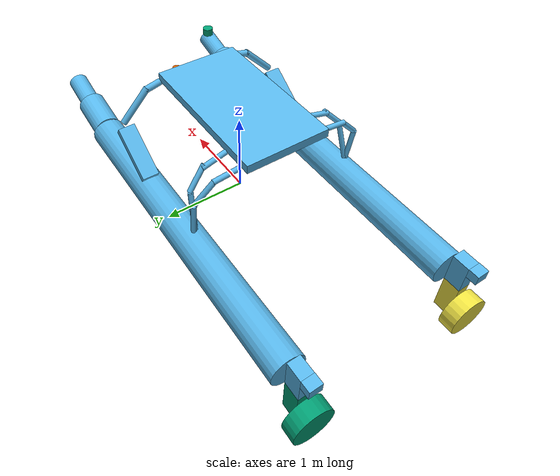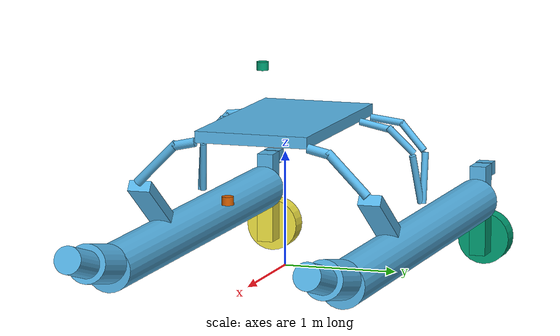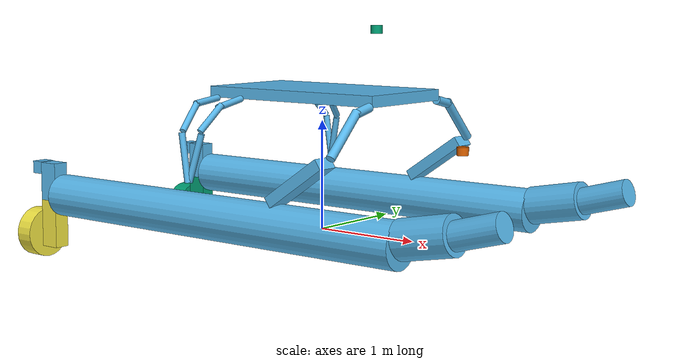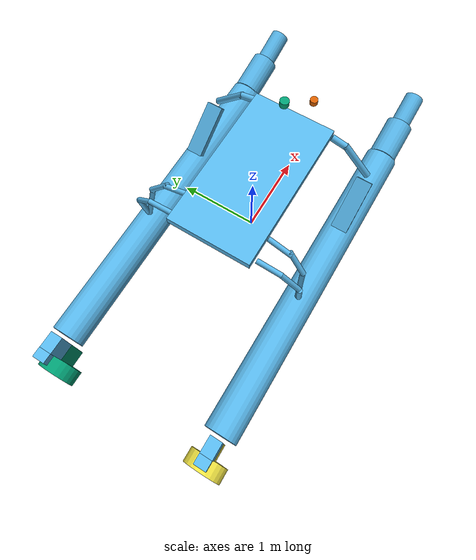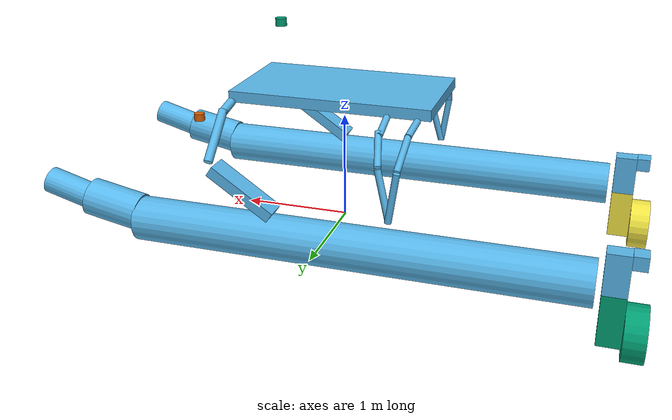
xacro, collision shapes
<?xml version="1.0"?>
<robot xmlns:xacro="http://ros.org/wiki/xacro" name="WAM-V">
  <!-- Defines the basic WAM-V -->
  <xacro:include filename="$(find wamv_description)/urdf/wamv_basic.xacro"/>

  <!-- Defines Sensors -->
  <xacro:include filename="$(find wamv_description)/urdf/sensors/sensors.urdf.xacro"/>
</robot>

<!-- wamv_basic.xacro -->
<robot xmlns:xacro="http://ros.org/wiki/xacro" name="wam-v">
  <!-- Defines the base vehicle -->
  <xacro:include filename="$(find wamv_description)/urdf/base/base.urdf.xacro" />
  <xacro:include filename="$(find wamv_description)/urdf/thruster/thruster.urdf.xacro"/>
  <xacro:include filename="$(find wamv_description)/urdf/ball_launcher/ball_launcher.urdf.xacro" />
  <xacro:base_v0/>
  <xacro:thruster_v0 prefix="left" prefix_factor="1"/>
  <xacro:thruster_v0 prefix="right" prefix_factor="-1"/>
  <gazebo>
    <plugin name="gazebo_ros_control" filename="libgazebo_ros_control.so">
    </plugin>
  </gazebo>
  <xacro:ball_launcher_v0/>

  <!-- Attach hydrodynamics plugin -->
  <xacro:include filename="$(find robotx_gazebo)/urdf/wamv_gazebo_dynamics_plugin.xacro" />
  <xacro:usv_dynamics_gazebo name="wamv_dynamics_plugin"/>

  <!-- Attach wind plugin -->
  <xacro:include filename="$(find robotx_gazebo)/urdf/wamv_gazebo_wind_plugin.xacro" />
  <xacro:usv_wind_gazebo name="wamv_wind_plugin"/>

  <!-- Attach thrust plugin -->
  <xacro:include filename="$(find robotx_gazebo)/urdf/wamv_gazebo_thrust_plugin.xacro" />
  <xacro:usv_thrust_gazebo name="wamv_thrust_plugin"/>

  <!-- Attach Ball Launcher plugin -->
  <xacro:include filename="$(find robotx_gazebo)/urdf/wamv_gazebo_ball_launcher_plugin.xacro" />
  <xacro:ball_launcher_gazebo name="wamv_ball_launcher_plugin"/>
  <xacro:usv_thrust_gazebo name="wamv_thrust_plugin"/>

  <!-- Attach cog_publisher plugin -->
  <xacro:include filename="$(find robotx_gazebo)/urdf/gazebo_cog_publisher_plugin.xacro" />
  <xacro:cog_publisher_gazebo name="gazebo_cog_publisher"/>
</robot>

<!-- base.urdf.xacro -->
<robot xmlns:xacro="http://ros.org/wiki/xacro" name="wam-v">
  <xacro:include filename="$(find wamv_description)/urdf/data/properties.xacro"/>

  <xacro:macro name="base_v0">
    <!-- base_footprint -->
    <link name="base_footprint"/>
    <joint name="base_link_joint" type="fixed">
      <origin xyz="0 0 0"/>
      <parent link="base_footprint"/>
      <child link="base_link"/>
    </joint>
    <!-- base_link -->
    <link name="base_link">
      <wind>true</wind>
      <!-- Visual -->
      <visual>
        <geometry>
          <mesh filename="package://wamv_description/mesh/base/WAMV-BASE.dae"/>
        </geometry>
      </visual>
      <!-- Collision -->
      <collision name="top_base">
        <origin xyz="0 -0 1.25" rpy="0 0 0" />
        <geometry>
          <box size="1.85 1 0.1" />
        </geometry>
      </collision>
      <xacro:float_collision_v0 prefix="left" prefix_factor="1"/>
      <xacro:float_collision_v0 prefix="right" prefix_factor="-1"/>
      <xacro:beam_collision_v0 prefix="left" prefix_factor="1"/>
      <xacro:beam_collision_v0 prefix="right" prefix_factor="-1"/>
      <!-- Inertial -->
      <inertial>
        <!-- From von Ellenrieder, consistent with WAM-V specs-->
        <mass value="340.0"/>
        <inertia ixx="120.0" ixy="0.0" ixz="0.0" iyy="393" iyz="0.0" izz="446.0"/>
      </inertial>
    </link>
  </xacro:macro>

  <xacro:macro name="float_collision_v0" params="prefix prefix_factor">
    <!-- Float -->
    <collision name="${prefix}_float">
      <origin xyz="-0.4 ${prefix_factor*1.03} 0.2" rpy="0 1.57 0" />
      <geometry>
        <cylinder length="4" radius="0.2" />
      </geometry>
    </collision>
    <collision name="${prefix}_mid_float">
      <origin xyz="1.85 ${prefix_factor*1.03} 0.3" rpy="0 1.38 0" />
      <geometry>
        <cylinder length="0.5" radius="0.17" />
      </geometry>
    </collision>
    <collision name="${prefix}_front_float">
      <origin xyz="2.3 ${prefix_factor*1.03} 0.4" rpy="0 1.3 0" />
      <geometry>
        <cylinder length="0.45" radius="0.12" />
      </geometry>
    </collision>
    <!-- Engine Part -->
    <collision name="${prefix}_engine_vertical_axis">
      <origin xyz="-2.55 ${prefix_factor*1.03} 0.32"/>
      <geometry>
        <box size="0.2 0.15 0.37" />
      </geometry>
    </collision>
    <collision name="${prefix}_engine_rear_end">
      <origin xyz="-2.71 ${prefix_factor*1.03} 0.45"/>
      <geometry>
        <box size="0.12 0.15 0.12" />
      </geometry>
    </collision>
  </xacro:macro>

  <xacro:macro name="beam_collision_v0" params="prefix prefix_factor">
    <!-- Beam -->
    <!-- Front -->
    <collision name="front_${prefix}_beam_lower">
      <origin xyz="0.9 ${prefix_factor*0.85} 1" rpy="${prefix_factor*0.78} 0 0" />
      <geometry>
        <cylinder length="0.5" radius="0.04" />
      </geometry>
    </collision>
    <collision name="front_${prefix}_beam_upper">
      <origin xyz="0.9 ${prefix_factor*0.6} 1.18" rpy="${prefix_factor*1.35} 0 0" />
      <geometry>
        <cylinder length="0.2" radius="0.04" />
      </geometry>
    </collision>
    <!-- Middle -->
    <collision name="mid_${prefix}_beam_lower">
      <origin xyz="-0.65 ${prefix_factor*0.99} 0.7" rpy="${prefix_factor*0.1} 0.25 0" />
      <geometry>
        <cylinder length="0.45" radius="0.03" />
      </geometry>
    </collision>
    <collision name="mid_${prefix}_beam_medium">
      <origin xyz="-0.57 ${prefix_factor*0.87} 1.05" rpy="${prefix_factor*0.75} 0.25 0" />
      <geometry>
        <cylinder length="0.32" radius="0.03" />
      </geometry>
    </collision>
    <collision name="mid_${prefix}_beam_upper">
      <origin xyz="-0.55 ${prefix_factor*0.65} 1.17" rpy="${prefix_factor*1.35} 0.25 0" />
      <geometry>
        <cylinder length="0.3" radius="0.03" />
      </geometry>
    </collision>
    <!-- Rear -->
    <collision name="rear_${prefix}_beam_lower">
      <origin xyz="-0.74 ${prefix_factor*1.03} 0.7" rpy="0 -0.15 0" />
      <geometry>
        <cylinder length="0.45" radius="0.03" />
      </geometry>
    </collision>
    <collision name="rear_${prefix}_beam_medium">
      <origin xyz="-0.79 ${prefix_factor*0.91} 1.05" rpy="${prefix_factor*0.75} -0.15 0" />
      <geometry>
        <cylinder length="0.32" radius="0.03" />
      </geometry>
    </collision>
    <collision name="rear_${prefix}_beam_upper">
      <origin xyz="-0.81 ${prefix_factor*0.67} 1.18" rpy="${prefix_factor*1.45} -0.15 0" />
      <geometry>
        <cylinder length="0.3" radius="0.03" />
      </geometry>
    </collision>
    <!-- Joint -->
    <collision name="${prefix}_joint">
      <origin xyz="0.58 ${prefix_factor*1.03} 0.6" rpy="0 -0.6 0" />
      <geometry>
        <box size="0.65 0.2 0.1" />
      </geometry>
    </collision>
  </xacro:macro>
</robot>

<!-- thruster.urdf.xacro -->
<robot xmlns:xacro="http://ros.org/wiki/xacro" name="wam-v">
  <xacro:include filename="$(find wamv_description)/urdf/data/common.xacro"/>
  <xacro:include filename="$(find wamv_description)/urdf/thruster/thruster.transmission.xacro"/>

  <xacro:macro name="thruster_v0" params="prefix prefix_factor">
    <link name="${prefix}_thruster_link">
      <!-- Visual -->
      <visual>
        <origin xyz="-2.5045 1.02714 -0.14563" rpy="0 0 ${pi}"/>
        <geometry>
          <mesh filename="package://wamv_description/mesh/base/WAMV-Thruster.dae"/>
        </geometry>
      </visual>
      <!-- Collision -->
      <collision name="${prefix}_thruster_vertical_axis">
        <origin xyz="0.045 ${prefix_factor*-0.003} -0.240"/>
        <geometry>
          <box size="0.2 0.15 0.46"/>
        </geometry>
      </collision>
      <collision name="${prefix}_thruster_propeller">
        <origin xyz="0.235 ${prefix_factor*-0.003} -0.345" rpy="0 ${pi/2} 0"/>
        <geometry>
          <cylinder length="0.18" radius="0.24"/>
        </geometry>
      </collision>
      <!-- Inertial -->
      <inertial name="${prefix}_thruster_vertical_axis">
        <origin xyz="0.045 ${prefix_factor*-0.003} -0.240"/>
        <xacro:box_inertial mass="2.5" height="0.2" width="0.15" depth="0.46"/>
      </inertial>
      <inertial name="${prefix}_thruster_propeller">
        <origin xyz="0.235 ${prefix_factor*-0.003} -0.345" rpy="0 ${pi/2} 0"/>
        <xacro:cylinder_inertial mass="0.5" length="0.18" radius="0.24"/>
      </inertial>
    </link>
    <joint name="${prefix}_thruster_joint" type="revolute">
      <origin xyz="-2.5045 ${prefix_factor*1.02714} 0.14563" rpy="0 0 ${pi}"/>"
      <parent link="base_link"/>
      <child link="${prefix}_thruster_link"/>
      <axis xyz="0 0 1"/>
      <dynamics damping="0.7" friction="0.7"/>
      <limit effort="10.0" lower="${-3*pi/4}" upper="${3*pi/4}" velocity="${pi/2}"/>
    </joint>

    <!-- Transmission -->
    <xacro:thruster_transmission_v0 prefix="${prefix}"/>
  </xacro:macro>

</robot>

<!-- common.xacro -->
<robot xmlns:xacro="http://ros.org/wiki/xacro">

  <xacro:macro name="cylinder_inertial" params="mass radius length">
	<mass value="${mass}"/>
	<inertia ixx="${((radius*radius)/4 + (length*length)/12)*mass}" ixy="0" ixz="0"
			 iyy="${((radius*radius)/4 + (length*length)/12)*mass}" iyz="0"
			 izz="${(mass*radius*radius)/2}" />
  </xacro:macro>

  <xacro:macro name="box_inertial" params="mass height width depth">
	<mass value="${mass}"/>
	<inertia ixx="${(mass*(width*width+depth*depth))/12}" ixy="0" ixz="0"
			 iyy="${(mass*(height*height+depth*depth))/12}" iyz="0"
			 izz="${(mass*(height*height+width*width))/12}" />
  </xacro:macro>
</robot>

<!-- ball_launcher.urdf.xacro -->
<robot xmlns:xacro="http://ros.org/wiki/xacro" name="wam-v">
  <xacro:include filename="$(find wamv_description)/urdf/ball_launcher/ball_launcher.gazebo.xacro"/>
  <xacro:include filename="$(find wamv_description)/urdf/ball_launcher/ball_launcher.transmission.xacro"/>

  <xacro:macro name="ball_launcher_v0">
    <link name="ball_launcher_base_link">
      <!-- Inertial -->
      <inertial name="ball_launcher_base">
        <origin xyz="0 0 0"/>
        <xacro:box_inertial mass="0.1" height="0.2" width="0.2" depth="0.2"/>
      </inertial>
    </link>

    <joint name="ball_launcher_base_joint" type="fixed">
      <origin xyz="1.1 0 1.2"/>
      <parent link="base_link"/>
      <child link="ball_launcher_base_link"/>
    </joint>

    <link name="ball_launcher_yaw_link">
      <!-- Inertial -->
      <inertial name="ball_launcher_base">
        <origin xyz="0 0 0"/>
        <xacro:box_inertial mass="0.1" height="0.2" width="0.2" depth="0.2"/>
      </inertial>
    </link>

    <joint name="ball_launcher_yaw_joint" type="revolute">
      <origin xyz="0 0 0" rpy="0 0 0"/>"
      <parent link="ball_launcher_base_link"/>
      <child link="ball_launcher_yaw_link"/>
      <axis xyz="0 0 1"/>
      <dynamics damping="0.7" friction="0.7"/>
      <limit effort="10.0" lower="${-3*pi/4}" upper="${3*pi/4}" velocity="${pi/2}"/>
    </joint>

    <link name="ball_launcher_pitch_link">
      <!-- Inertial -->
      <inertial name="ball_launcher_base">
        <origin xyz="0 0 0"/>
        <xacro:box_inertial mass="0.1" height="0.2" width="0.2" depth="0.2"/>
      </inertial>
      <!-- Visual -->
      <visual>
        <geometry>
          <cylinder length="0.2" radius="0.05"/>
        </geometry>
        <origin rpy="0 ${pi/2} 0" xyz="0 0 0"/>
        <material name="gray"/>
      </visual>
    </link>

    <joint name="ball_launcher_pitch_joint" type="revolute">
      <origin xyz="0 0 0" rpy="${-3*pi/2} 0 0"/>"
      <parent link="ball_launcher_yaw_link"/>
      <child link="ball_launcher_pitch_link"/>
      <axis xyz="0 0 1"/>
      <dynamics damping="0.7" friction="0.7"/>
      <limit effort="10.0" lower="${-3*pi/4}" upper="${3*pi/4}" velocity="${pi/2}"/>
    </joint>

    <!-- Transmission -->
    <xacro:ball_launcher_transmission_v0/>

    <!-- Gazebo -->
    <xacro:ball_launcher_gazebo_v0/>
  </xacro:macro>
</robot>

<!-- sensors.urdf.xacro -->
<robot xmlns:xacro="http://ros.org/wiki/xacro" name="wam-v">
  <xacro:include filename="$(find wamv_description)/urdf/sensors/stereo_camera/stereo_camera.urdf.xacro"/>
  <xacro:include filename="$(find wamv_description)/urdf/sensors/gps/gps.urdf.xacro"/>
  <xacro:include filename="$(find wamv_description)/urdf/sensors/imu/imu.urdf.xacro"/>
  <xacro:include filename="$(find wamv_description)/urdf/sensors/twist/twist.urdf.xacro"/>
  <xacro:include filename="$(find wamv_description)/urdf/sensors/velodyne/velodyne.urdf.xacro"/>

  <!-- Camera-->
  <xacro:camera_v0 prefix="front" parent="base_link">
    <origin xyz="0.8 0 1.6"/>
  </xacro:camera_v0>
  <!-- GPS -->
  <xacro:gps_v0/>
  <!-- IMU -->
  <xacro:imu_v0/>
  <!-- Twist -->
  <xacro:twist_v0/>
  <!-- Velodyne -->
  <xacro:velodyne_v0/>

</robot>

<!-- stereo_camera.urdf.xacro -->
<robot xmlns:xacro="http://ros.org/wiki/xacro" name="wam-v">
  <xacro:include filename="$(find wamv_description)/urdf/sensors/camera/camera.urdf.xacro"/>
  <xacro:macro name="stereo_camera_v0" params="prefix parent base_line_length *origin">
    <!-- add link and joint -->
    <link name="${prefix}_stereo_camera_base_link"/>
    <joint name="${prefix}_stereo_camera_joint" type="fixed">
      <insert_block name="origin"/>
      <parent link="${parent}"/>
      <child link="${prefix}_stereo_camera_base_link"/>
    </joint>
    <!-- Left Camera -->
    <xacro:camera_v0 prefix="left" parent="${prefix}_stereo_camera_base_link">
      <origin xyz="0 ${base_line_length*(0.5)} 0"/>
    </xacro:camera_v0>
    <!-- Right Camera -->
    <xacro:camera_v0 prefix="right" parent="${prefix}_stereo_camera_base_link">
      <origin xyz="0 ${base_line_length*(-0.5)} 0"/>
    </xacro:camera_v0>
  </xacro:macro>
</robot>

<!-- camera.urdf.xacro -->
<robot xmlns:xacro="http://ros.org/wiki/xacro" name="wam-v">
  <xacro:include filename="$(find wamv_description)/urdf/sensors/camera/camera.gazebo.xacro"/>

  <xacro:macro name="camera_v0" params="prefix parent *origin">
    <!-- Link & Joint -->
    <link name="${prefix}_camera_link"/>
    <joint name="${prefix}_camera_joint" type="fixed">
      <insert_block name="origin"/>
      <parent link="${parent}"/>
      <child link="${prefix}_camera_link"/>
    </joint>
    <!-- Gazebo -->
    <xacro:camera_gazebo_v0 prefix="${prefix}"/>
  </xacro:macro>

</robot>

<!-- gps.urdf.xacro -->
<robot xmlns:xacro="http://ros.org/wiki/xacro" name="wam-v">
  <xacro:include filename="$(find wamv_description)/urdf/sensors/gps/gps.gazebo.xacro"/>

  <xacro:macro name="gps_v0">
    <!-- Link & Joint -->
    <link name="gps"/>
    <joint name="gps_joint" type="fixed">
      <origin xyz="0 0 1.5"/>
      <parent link="base_link"/>
      <child link="gps"/>
    </joint>
    <!-- Gazebo -->
    <xacro:gps_gazebo_v0/>
  </xacro:macro>

</robot>

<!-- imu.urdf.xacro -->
<robot xmlns:xacro="http://ros.org/wiki/xacro" name="wam-v">
  <xacro:include filename="$(find wamv_description)/urdf/sensors/imu/imu.gazebo.xacro"/>

  <xacro:macro name="imu_v0">
    <!-- Link & Joint -->
    <link name="imu"/>
    <joint name="imu_joint" type="fixed">
      <origin xyz="-0.3 0 1.5"/>
      <parent link="base_link"/>
      <child link="imu"/>
    </joint>
    <!-- Gazebo -->
    <xacro:imu_gazebo_v0/>
  </xacro:macro>

</robot>

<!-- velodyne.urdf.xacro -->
<robot xmlns:xacro="http://ros.org/wiki/xacro" name="wam-v">
  <xacro:include filename="$(find velodyne_description)/urdf/VLP-16.urdf.xacro"/>

  <xacro:macro name="velodyne_v0">
    <!-- Velodyne Link+Joint+Plugin -->
    <xacro:VLP-16 parent="base_link" name="velodyne"
                  topic="/velodyne_points"
                  hz="10" samples="440">
      <origin xyz="0.6 0 1.8" rpy="0 0 0" />
    </xacro:VLP-16>
    <!-- Scan Link & Joint -->
    <link name="scan"/>
    <joint name="scan_joint" type="fixed">
      <origin xyz="1.5 0 -1" rpy="0 0 0"/>
      <parent link="base_link"/>
      <child link="scan"/>
    </joint>
    <!-- Velodyne Link+Joint+Plugin -->
    <xacro:VLP-16 parent="base_link" name="velodyne2"
                  topic="/velodyne2_points"
                  hz="10" samples="440">
      <origin xyz="1.5 0 0.8" rpy="0 0 0" />
    </xacro:VLP-16>
  </xacro:macro>

</robot>

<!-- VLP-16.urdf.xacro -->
<robot xmlns:xacro="http://www.ros.org/wiki/xacro" name="VLP-16">
  <xacro:property name="M_PI" value="3.1415926535897931" />
  <xacro:macro name="VLP-16" params="*origin is_sim:=true parent:=base_link name:=velodyne tf_prefix:='' topic:=/velodyne_points organize_cloud:=false hz:=10 lasers:=16 samples:=1875 collision_range:=0.3 min_range:=0.0 max_range:=100.0 noise:=0.008 min_angle:=-${M_PI} max_angle:=${M_PI} gpu:=false">

    <joint name="${name}_base_mount_joint" type="fixed">
      <xacro:insert_block name="origin" />
      <parent link="${parent}"/>
      <child link="${name}_base_link"/>
    </joint>

    <link name="${name}_base_link">
      <inertial>
        <mass value="0.83"/>
        <origin xyz="0 0 0.03585"/>
        <inertia ixx="${(0.83 * (3.0*0.0516*0.0516 + 0.0717*0.0717)) / 12.0}" ixy="0" ixz="0"
          iyy="${(0.83 * (3.0*0.0516*0.0516 + 0.0717*0.0717)) / 12.0}" iyz="0"
          izz="${0.5 * 0.83 * (0.0516*0.0516)}"/>
      </inertial>
      <visual>
        <geometry>
          <mesh filename="package://velodyne_description/meshes/VLP16_base_1.dae" />
        </geometry>
      </visual>
      <visual>
        <geometry>
          <mesh filename="package://velodyne_description/meshes/VLP16_base_2.dae" />
        </geometry>
      </visual>
      <collision>
        <origin rpy="0 0 0" xyz="0 0 0.03585"/>
        <geometry>
          <cylinder radius="0.0516" length="0.0717"/>
        </geometry>
      </collision>
    </link>

    <joint name="${name}_base_scan_joint" type="fixed" >
      <origin xyz="0 0 0.0377" rpy="0 0 0" />
      <parent link="${name}_base_link" />
      <child link="${name}"/>
    </joint>

    <link name="${name}">
      <inertial>
        <mass value="0.01"/>
        <origin xyz="0 0 0"/>
        <inertia ixx="1e-7" ixy="0" ixz="0" iyy="1e-7" iyz="0" izz="1e-7"/>
      </inertial>
      <visual>
        <origin xyz="0 0 -0.0377" />
        <geometry>
          <mesh filename="package://velodyne_description/meshes/VLP16_scan.dae" />
        </geometry>
      </visual>
      <collision>
        <geometry>
          <sphere radius="0"/>
        </geometry>
      </collision>
    </link>

    <!-- Gazebo requires the velodyne_gazebo_plugins package -->
    <xacro:if value="${is_sim}">
        <gazebo reference="${name}">
            <xacro:if value="${gpu}">
                <sensor type="gpu_ray" name="${name}-VLP16">
                <pose>0 0 0 0 0 0</pose>
                <visualize>false</visualize>
                <update_rate>${hz}</update_rate>
                <ray>
                    <scan>
                    <horizontal>
                        <samples>${samples}</samples>
                        <resolution>1</resolution>
                        <min_angle>${min_angle}</min_angle>
                        <max_angle>${max_angle}</max_angle>
                    </horizontal>
                    <vertical>
                        <samples>${lasers}</samples>
                        <resolution>1</resolution>
                        <min_angle>-${15.0*M_PI/180.0}</min_angle>
                        <max_angle> ${15.0*M_PI/180.0}</max_angle>
                    </vertical>
                    </scan>
                    <range>
                    <min>${collision_range}</min>
                    <max>${max_range+1}</max>
                    <resolution>0.001</resolution>
                    </range>
                    <noise>
                    <type>gaussian</type>
                    <mean>0.0</mean>
                    <stddev>0.0</stddev>
                    </noise>
                </ray>
                <plugin name="gazebo_ros_laser_controller" filename="libgazebo_ros_velodyne_laser.so">
                    <ros>
                    <namespace>/${name}</namespace>
                    <remapping>~/out:=${topic}</remapping>
                    </ros>
                    <tf_prefix>${tf_prefix}</tf_prefix>
                    <frame_name>${name}</frame_name>
                    <organize_cloud>${organize_cloud}</organize_cloud>
                    <min_range>${min_range}</min_range>
                    <max_range>${max_range}</max_range>
                    <gaussian_noise>${noise}</gaussian_noise>
                </plugin>
                </sensor>
            </xacro:if>
            <xacro:unless value="${gpu}">
                <sensor type="ray" name="${name}-VLP16">
                <pose>0 0 0 0 0 0</pose>
                <visualize>false</visualize>
                <update_rate>${hz}</update_rate>
                <ray>
                    <scan>
                    <horizontal>
                        <samples>${samples}</samples>
                        <resolution>1</resolution>
                        <min_angle>${min_angle}</min_angle>
                        <max_angle>${max_angle}</max_angle>
                    </horizontal>
                    <vertical>
                        <samples>${lasers}</samples>
                        <resolution>1</resolution>
                        <min_angle>-${15.0*M_PI/180.0}</min_angle>
                        <max_angle> ${15.0*M_PI/180.0}</max_angle>
                    </vertical>
                    </scan>
                    <range>
                    <min>${collision_range}</min>
                    <max>${max_range+1}</max>
                    <resolution>0.001</resolution>
                    </range>
                    <noise>
                    <type>gaussian</type>
                    <mean>0.0</mean>
                    <stddev>0.0</stddev>
                    </noise>
                </ray>
                <plugin name="gazebo_ros_laser_controller" filename="libgazebo_ros_velodyne_laser.so">
                    <ros>
                    <namespace>/${name}</namespace>
                    <remapping>~/out:=${topic}</remapping>
                    </ros>
                    <tf_prefix>${tf_prefix}</tf_prefix>
                    <frame_name>${name}</frame_name>
                    <organize_cloud>${organize_cloud}</organize_cloud>
                    <min_range>${min_range}</min_range>
                    <max_range>${max_range}</max_range>
                    <gaussian_noise>${noise}</gaussian_noise>
                </plugin>
                </sensor>
            </xacro:unless>
        </gazebo>
    </xacro:if>

  </xacro:macro>
</robot>
